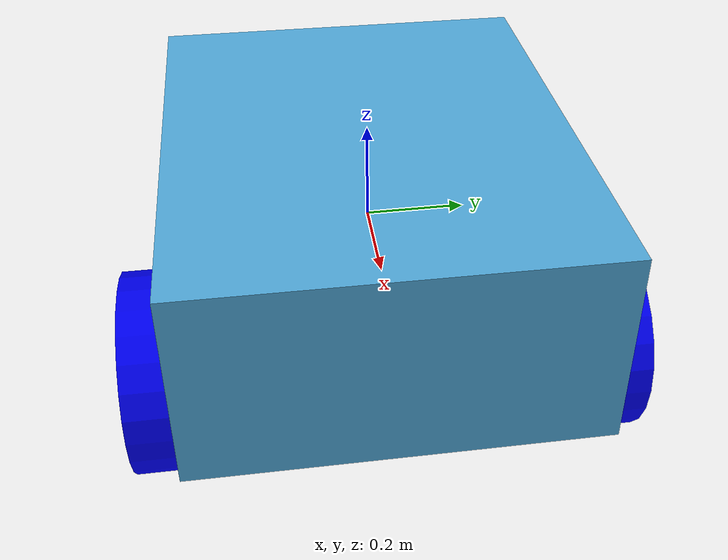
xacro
<?xml version="1.0"?>
<robot name="two_wheel_robot" xmlns:xacro="http://www.ros.org/wiki/xacro">
  <xacro:include filename="$(find robot_desc)/urdf/gazebo_control.xacro"/>

  <!-- Define the base link representing the main body of the robot -->
  <link name="base_link"/>

  <link name="dummy_root_link">
    <!-- Add a small box as a visual representation -->
    <visual>
      <origin rpy="0 0 0" xyz="0 0 0" />
      <geometry>
        <box size="1 0.8 0.4"/>
      </geometry>

    </visual>
    <collision>
      <origin rpy="0 0 0" xyz="0 0 0" />
      <geometry>
        <box size="1 0.8 0.4"/>
      </geometry>
    </collision>

    <!-- Set mass and inertia properties to zero -->

  </link>
  <joint name="fixed_joint" type="fixed">
    <parent link="dummy_root_link"/>
    <child link="base_link"/>
    <origin xyz="0 0 -0.4" rpy="0 0 0"/>
  </joint>

  <!-- Define the left wheel link -->
  <link name="left_wheel">
    <visual>
		<origin rpy="1.57 0 0" xyz="0 0 0" />

      <geometry>
        <cylinder radius="0.2" length="0.1"/>
      </geometry>
	  <material name="blue">
        <color rgba="0 0 1 1"/> <!-- Blue color -->
      </material>
    </visual>
    <collision>
      <origin rpy="1.57 0 0" xyz="0 0 0" />
      <geometry>
        <cylinder radius="0.2" length="0.1"/>
      </geometry>
    </collision>
    <inertial>
      <mass value="0.5"/>
      <inertia ixx="0.01" ixy="0" ixz="0" iyy="0.01" iyz="0" izz="0.01"/>
    </inertial>
  </link>

  <!-- Define the right wheel link -->
  <link name="right_wheel">
    <visual>
		<origin rpy="1.57 0 0" xyz="0 0 0" />

      <geometry>
        <cylinder radius="0.2" length="0.1"/>
      </geometry>
	  <material name="blue">
        <color rgba="0 0 1 1"/> <!-- Blue color -->
      </material>
    </visual>
    <collision>
      <origin rpy="1.57 0 0" xyz="0 0 0" />
      <geometry>
        <cylinder radius="0.2" length="0.1"/>
      </geometry>
    </collision>
    <inertial>
      <mass value="0.5"/>
      <inertia ixx="0.01" ixy="0" ixz="0" iyy="0.01" iyz="0" izz="0.01"/>
    </inertial>

  </link>

  <!-- Define the left wheel joint -->
  <joint name="wheel_left_joint" type="continuous">
	<parent link="dummy_root_link"/>
    <child link="left_wheel"/>
    <origin xyz="0.2 -0.45 -0.2" rpy="0 0 0"/>
    <axis xyz="0 1 0"/>
  </joint>

  <!-- Define the right wheel joint -->
  <joint name="wheel_right_joint" type="continuous">
    <parent link="dummy_root_link"/>
    <child link="right_wheel"/>
    <origin xyz="0.2 0.45 -0.2" rpy="0 0 0"/>
    <axis xyz="0 1 0"/>
  </joint>

  <link name="sphere">
    <visual>
      <origin rpy="0 0 0" xyz="0 0 0" />
      <geometry>
        <sphere radius="0.2"/>
      </geometry>
    </visual>
    <collision>
      <origin rpy="0 0 0" xyz="0 0 0" />
      <geometry>
        <sphere radius="0.2"/>
      </geometry>
    </collision>
    <inertial>
      <mass value="0.1"/>
      <inertia ixx="0.001" ixy="0" ixz="0" iyy="0.001" iyz="0" izz="0.001"/>
    </inertial>
  </link>
  <joint name="sphere_joint" type="fixed">
    <parent link="dummy_root_link"/>
    <child link="sphere"/>
    <origin xyz="-0.3 0 -0.2" rpy="0 0 0"/>
  </joint>

</robot>
